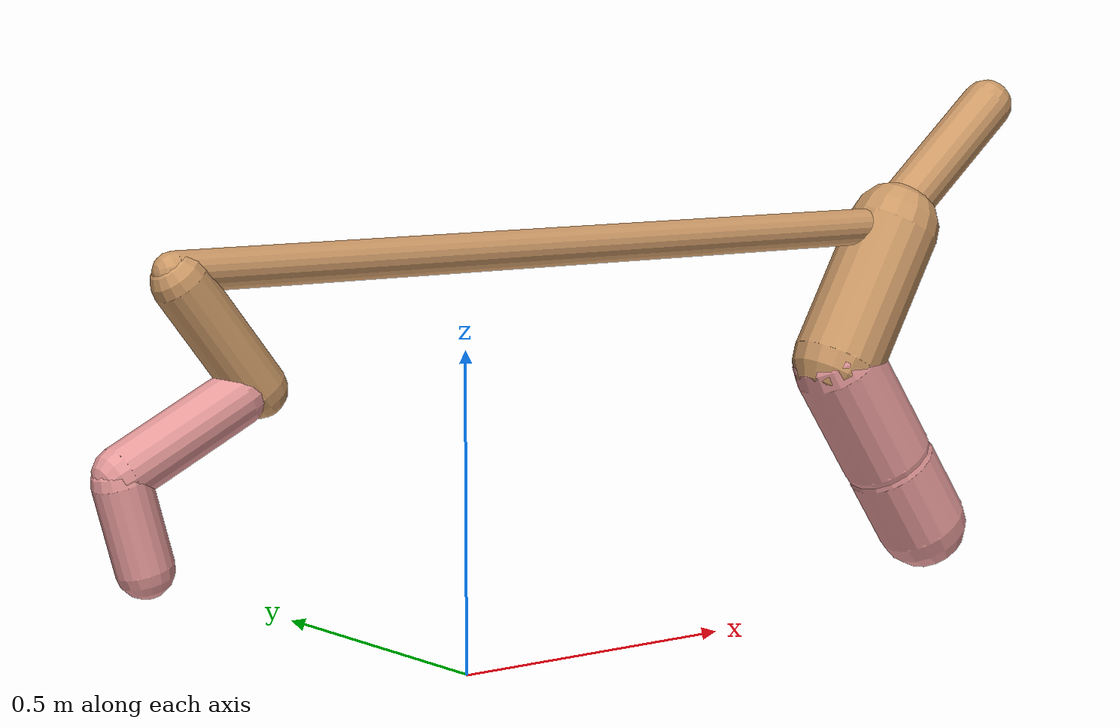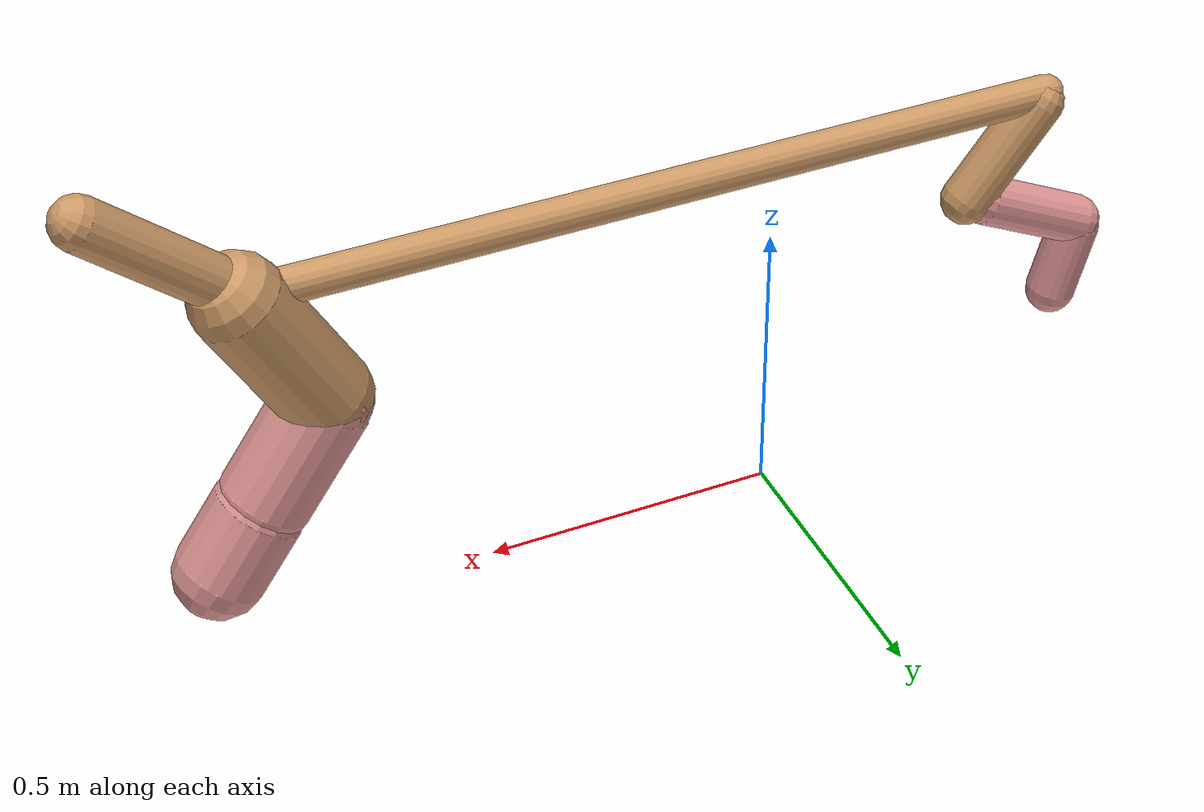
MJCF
<mujoco model="cheetah">
  <compiler angle="radian" coordinate="local" inertiafromgeom="true" settotalmass="14" />
  <default>
    <joint armature=".1" damping=".01" limited="true" solimplimit="0 .8 .03" solreflimit=".02 1" stiffness="8" />
    <geom conaffinity="0" condim="3" contype="1" friction="0.8 .1 .1" rgba="0.8 0.6 .4 1" solimp="0.0 0.8 0.01" solref="0.02 1" />
    <motor ctrllimited="true" ctrlrange="-1 1" />
  </default>
  <size nstack="300000" nuser_geom="1" />
  <option gravity="0 0 -9.81" timestep="0.01" />
  <worldbody>
    <body name="torso" pos="0.0 0.0 0.6472704527129978">
      <joint armature="0" axis="1 0 0" damping="0" limited="false" name="ignorex" pos="0 0 0" stiffness="0" type="slide" />
      <joint armature="0" axis="0 0 1" damping="0" limited="false" name="ignorez" pos="0 0 0" stiffness="0" type="slide" />
      <joint armature="0" axis="0 1 0" damping="0" limited="false" name="ignorey" pos="0 0 0" stiffness="0" type="hinge" />
      <geom fromto="-0.5 0.0 0.0 0.894893077451353 0.0 0.0" name="torso" size="0.030081387519562148" type="capsule" />
      <geom axisangle="0 1 0 .87" name="head" pos="0.994893077451353 0.0 0.1" size="0.04357948768922193 0.15" type="capsule" />

      <body name="bthigh" pos="-.5 0 0">
        <joint axis="0 1 0" damping="6" name="bthigh" pos="0 0 0" range="-.52 1.05" stiffness="240" type="hinge" />
        <geom axisangle="0 1 0 -3.8" name="bthigh" pos="0.0734775819030384 0.0 -0.0955208564739499" size="0.042881666319721325 0.10149999999999999" type="capsule" />
        <body name="bshin" pos="0.10695516380607678 0.0 -0.18104171294789978">
          <joint axis="0 1 0" damping="4.5" name="bshin" pos="0 0 0" range="-.785 .785" stiffness="180" type="hinge" />
          <geom axisangle="0 1 0 -2.03" name="bshin" pos="-0.0997507764050038 0.0 -0.0498753882025019" rgba="0.9 0.6 0.6 1" size="0.042881666319721325 0.105" type="capsule" />
          <body name="bfoot" pos="-0.1995015528100076 0.0 -0.0997507764050038">
            <joint axis="0 1 0" damping="3" name="bfoot" pos="0 0 0" range="-.4 .785" stiffness="120" type="hinge" />
            <geom axisangle="0 1 0 -.27" name="bfoot" pos="0.021667753813597694 0.0 -0.07005907066396588" rgba="0.9 0.6 0.6 1" size="0.042881666319721325 0.0658" type="capsule" />
            <inertial mass="10" />
          </body>
        </body>
      </body>
      <body name="fthigh" pos="0.894893077451353 0.0 0.0">
        <joint axis="0 1 0" damping="4.5" name="fthigh" pos="0 0 0" range="-1.5 0.8" stiffness="180" type="hinge" />
        <geom axisangle="0 1 0 .52" name="fthigh" pos="-0.0663037003013591 0.0 -0.1136634862309013" size="0.07723774396133536 0.12566419478120158" type="capsule" />
        <body name="fshin" pos="-0.1326074006027182 0.0 -0.2273269724618026">
          <joint axis="0 1 0" damping="3" name="fshin" pos="0 0 0" range="-1.2 1.1" stiffness="120" type="hinge" />
          <geom axisangle="0 1 0 -.6" name="fshin" pos="0.06157688169919133 0.0 -0.08526029773734183" rgba="0.9 0.6 0.6 1" size="0.07723774396133536 0.10015341839704787" type="capsule" />
          <body name="ffoot" pos="0.12315376339838266 0.0 -0.17052059547468365">
            <joint axis="0 1 0" damping="1.5" name="ffoot" pos="0 0 0" range="-3.1 -0.3" stiffness="60" type="hinge" />
            <geom axisangle="0 1 0 -.6" name="ffoot" pos="0.04291216191554609 0.0 -0.06675225186862727" rgba="0.9 0.6 0.6 1" size="0.07723774396133536 0.06613904988484294" type="capsule" />
            <inertial mass="10" />
          </body>
        </body>
      </body>
    </body>
  </worldbody>
  <actuator>
    <motor gear="120" joint="bthigh" name="bthigh" />
    <motor gear="90" joint="bshin" name="bshin" />
    <motor gear="60" joint="bfoot" name="bfoot" />
    <motor gear="120" joint="fthigh" name="fthigh" />
    <motor gear="60" joint="fshin" name="fshin" />
    <motor gear="30" joint="ffoot" name="ffoot" />
  </actuator>
</mujoco>
